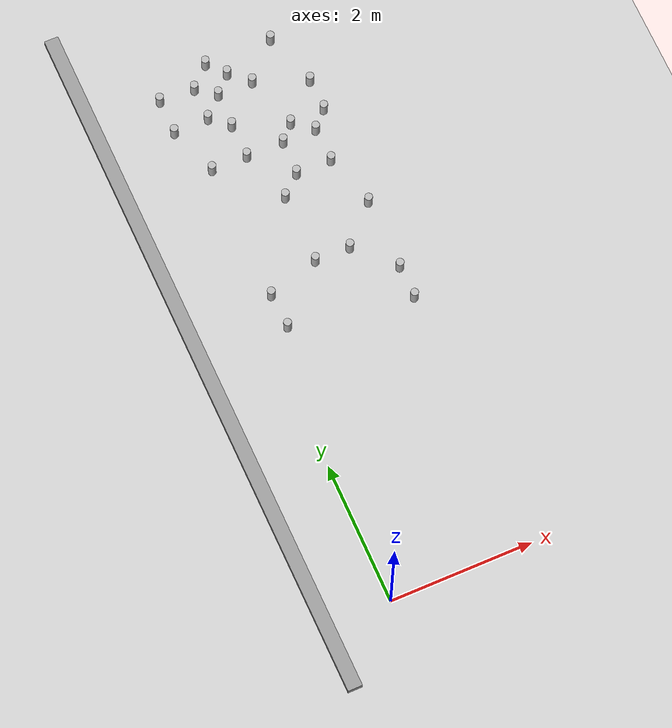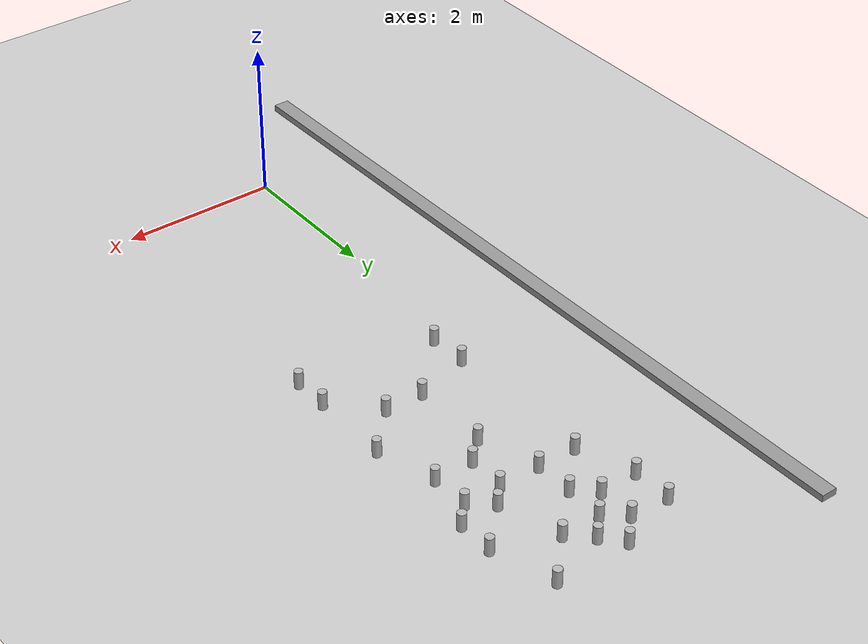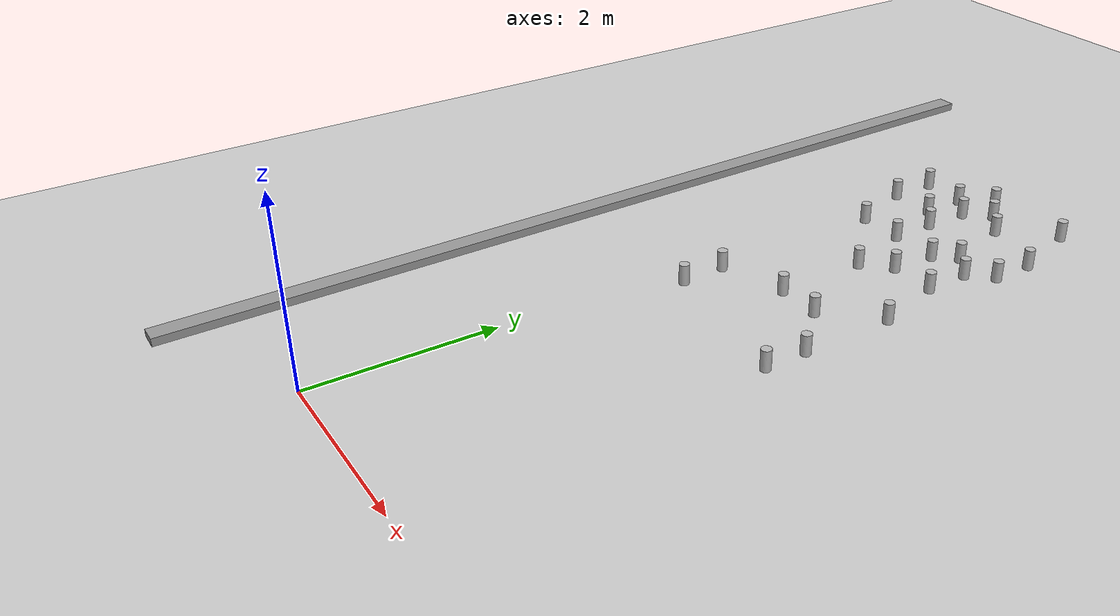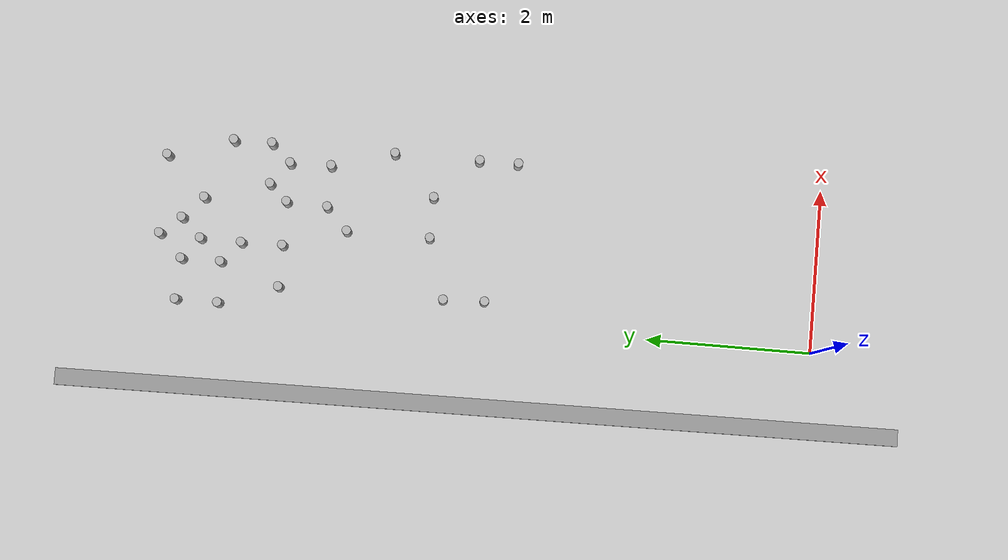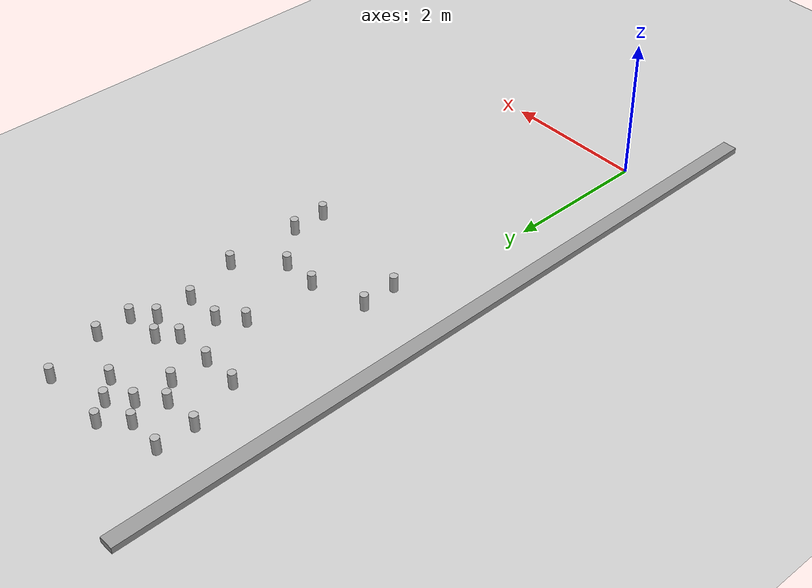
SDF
<sdf version="1.6">
 <world name="default">
  <model name="ground_plane">
   <static>1</static>
   <link name="link">
    <collision name="collision">
     <geometry><plane><normal>0 0 1</normal><size>100 100</size></plane></geometry>
     <surface><friction><ode><mu>100</mu><mu2>50</mu2></ode></friction></surface>
    </collision>
    <visual name="visual">
     <cast_shadows>0</cast_shadows>
     <geometry><plane><normal>0 0 1</normal><size>100 100</size></plane></geometry>
     <material>
      <script><uri>file://media/materials/scripts/gazebo.material</uri><name>Gazebo/Grey</name></script>
     </material>
    </visual>
   </link>
  </model>
  <model name="wall1">
   <static>1</static>
   <link name="link">
    <pose>0 0 0.42 0 -0 0</pose>
    <collision name="collision"><geometry><box><size>10 0.2 0.084</size></box></geometry></collision>
    <visual name="visual">
     <cast_shadows>0</cast_shadows>
     <geometry><box><size>10 0.2 0.084</size></box></geometry>
     <material>
      <script>
       <uri>model://grey_wall/materials/scripts</uri>
       <uri>model://grey_wall/materials/textures</uri>
       <name>vrc/grey_wall</name>
      </script>
     </material>
    </visual>
   </link>
   <pose>-1 4.0 0 0 -0 -1.55905</pose>
  </model>
  <model name="can0.07.72709570914">
   <link name="link">
    <pose>0 0 0.115 0 -0 0</pose>
    <inertial>
     <mass>0.39</mass>
     <inertia><ixx>0.00058</ixx><ixy>0</ixy><ixz>0</ixz><iyy>0.00058</iyy><iyz>0</iyz><izz>0.00019</izz></inertia>
    </inertial>
    <collision name="collision">
     <geometry><cylinder><radius>0.055</radius><length>0.23</length></cylinder></geometry>
    </collision>
    <visual name="visual">
     <geometry><cylinder><radius>0.055</radius><length>0.23</length></cylinder></geometry>
     <material>
      <script>
       <uri>model://beer/materials/scripts</uri>
       <uri>model://beer/materials/textures</uri>
       <name>Beer/Diffuse</name>
      </script>
     </material>
    </visual>
   </link>
   <pose>0.0 7.72709570914 -2e-06 1e-06 0 -9.5e-05</pose>
  </model>
  <model name="can0.7857185059218.0">
   <link name="link">
    <pose>0 0 0.115 0 -0 0</pose>
    <inertial>
     <mass>0.39</mass>
     <inertia><ixx>0.00058</ixx><ixy>0</ixy><ixz>0</ixz><iyy>0.00058</iyy><iyz>0</iyz><izz>0.00019</izz></inertia>
    </inertial>
    <collision name="collision">
     <geometry><cylinder><radius>0.055</radius><length>0.23</length></cylinder></geometry>
    </collision>
    <visual name="visual">
     <geometry><cylinder><radius>0.055</radius><length>0.23</length></cylinder></geometry>
     <material>
      <script>
       <uri>model://beer/materials/scripts</uri>
       <uri>model://beer/materials/textures</uri>
       <name>Beer/Diffuse</name>
      </script>
     </material>
    </visual>
   </link>
   <pose>0.785718505921 8.0 -2e-06 1e-06 0 -9.5e-05</pose>
  </model>
  <model name="can2.06.74284869615">
   <link name="link">
    <pose>0 0 0.115 0 -0 0</pose>
    <inertial>
     <mass>0.39</mass>
     <inertia><ixx>0.00058</ixx><ixy>0</ixy><ixz>0</ixz><iyy>0.00058</iyy><iyz>0</iyz><izz>0.00019</izz></inertia>
    </inertial>
    <collision name="collision">
     <geometry><cylinder><radius>0.055</radius><length>0.23</length></cylinder></geometry>
    </collision>
    <visual name="visual">
     <geometry><cylinder><radius>0.055</radius><length>0.23</length></cylinder></geometry>
     <material>
      <script>
       <uri>model://beer/materials/scripts</uri>
       <uri>model://beer/materials/textures</uri>
       <name>Beer/Diffuse</name>
      </script>
     </material>
    </visual>
   </link>
   <pose>2.0 6.74284869615 -2e-06 1e-06 0 -9.5e-05</pose>
  </model>
  <model name="can2.04.20142502307">
   <link name="link">
    <pose>0 0 0.115 0 -0 0</pose>
    <inertial>
     <mass>0.39</mass>
     <inertia><ixx>0.00058</ixx><ixy>0</ixy><ixz>0</ixz><iyy>0.00058</iyy><iyz>0</iyz><izz>0.00019</izz></inertia>
    </inertial>
    <collision name="collision">
     <geometry><cylinder><radius>0.055</radius><length>0.23</length></cylinder></geometry>
    </collision>
    <visual name="visual">
     <geometry><cylinder><radius>0.055</radius><length>0.23</length></cylinder></geometry>
     <material>
      <script>
       <uri>model://beer/materials/scripts</uri>
       <uri>model://beer/materials/textures</uri>
       <name>Beer/Diffuse</name>
      </script>
     </material>
    </visual>
   </link>
   <pose>2.0 4.20142502307 -2e-06 1e-06 0 -9.5e-05</pose>
  </model>
  <model name="can0.2540566139566.5">
   <link name="link">
    <pose>0 0 0.115 0 -0 0</pose>
    <inertial>
     <mass>0.39</mass>
     <inertia><ixx>0.00058</ixx><ixy>0</ixy><ixz>0</ixz><iyy>0.00058</iyy><iyz>0</iyz><izz>0.00019</izz></inertia>
    </inertial>
    <collision name="collision">
     <geometry><cylinder><radius>0.055</radius><length>0.23</length></cylinder></geometry>
    </collision>
    <visual name="visual">
     <geometry><cylinder><radius>0.055</radius><length>0.23</length></cylinder></geometry>
     <material>
      <script>
       <uri>model://beer/materials/scripts</uri>
       <uri>model://beer/materials/textures</uri>
       <name>Beer/Diffuse</name>
      </script>
     </material>
    </visual>
   </link>
   <pose>0.254056613956 6.5 -2e-06 1e-06 0 -9.5e-05</pose>
  </model>
  <model name="can1.07.7473566899">
   <link name="link">
    <pose>0 0 0.115 0 -0 0</pose>
    <inertial>
     <mass>0.39</mass>
     <inertia><ixx>0.00058</ixx><ixy>0</ixy><ixz>0</ixz><iyy>0.00058</iyy><iyz>0</iyz><izz>0.00019</izz></inertia>
    </inertial>
    <collision name="collision">
     <geometry><cylinder><radius>0.055</radius><length>0.23</length></cylinder></geometry>
    </collision>
    <visual name="visual">
     <geometry><cylinder><radius>0.055</radius><length>0.23</length></cylinder></geometry>
     <material>
      <script>
       <uri>model://beer/materials/scripts</uri>
       <uri>model://beer/materials/textures</uri>
       <name>Beer/Diffuse</name>
      </script>
     </material>
    </visual>
   </link>
   <pose>1.0 7.7473566899 -2e-06 1e-06 0 -9.5e-05</pose>
  </model>
  <model name="can1.297643053756.5">
   <link name="link">
    <pose>0 0 0.115 0 -0 0</pose>
    <inertial>
     <mass>0.39</mass>
     <inertia><ixx>0.00058</ixx><ixy>0</ixy><ixz>0</ixz><iyy>0.00058</iyy><iyz>0</iyz><izz>0.00019</izz></inertia>
    </inertial>
    <collision name="collision">
     <geometry><cylinder><radius>0.055</radius><length>0.23</length></cylinder></geometry>
    </collision>
    <visual name="visual">
     <geometry><cylinder><radius>0.055</radius><length>0.23</length></cylinder></geometry>
     <material>
      <script>
       <uri>model://beer/materials/scripts</uri>
       <uri>model://beer/materials/textures</uri>
       <name>Beer/Diffuse</name>
      </script>
     </material>
    </visual>
   </link>
   <pose>1.29764305375 6.5 -2e-06 1e-06 0 -9.5e-05</pose>
  </model>
  <model name="can0.2639431775654.5">
   <link name="link">
    <pose>0 0 0.115 0 -0 0</pose>
    <inertial>
     <mass>0.39</mass>
     <inertia><ixx>0.00058</ixx><ixy>0</ixy><ixz>0</ixz><iyy>0.00058</iyy><iyz>0</iyz><izz>0.00019</izz></inertia>
    </inertial>
    <collision name="collision">
     <geometry><cylinder><radius>0.055</radius><length>0.23</length></cylinder></geometry>
    </collision>
    <visual name="visual">
     <geometry><cylinder><radius>0.055</radius><length>0.23</length></cylinder></geometry>
     <material>
      <script>
       <uri>model://beer/materials/scripts</uri>
       <uri>model://beer/materials/textures</uri>
       <name>Beer/Diffuse</name>
      </script>
     </material>
    </visual>
   </link>
   <pose>0.263943177565 4.5 -2e-06 1e-06 0 -9.5e-05</pose>
  </model>
  <model name="can0.57.7079194421">
   <link name="link">
    <pose>0 0 0.115 0 -0 0</pose>
    <inertial>
     <mass>0.39</mass>
     <inertia><ixx>0.00058</ixx><ixy>0</ixy><ixz>0</ixz><iyy>0.00058</iyy><iyz>0</iyz><izz>0.00019</izz></inertia>
    </inertial>
    <collision name="collision">
     <geometry><cylinder><radius>0.055</radius><length>0.23</length></cylinder></geometry>
    </collision>
    <visual name="visual">
     <geometry><cylinder><radius>0.055</radius><length>0.23</length></cylinder></geometry>
     <material>
      <script>
       <uri>model://beer/materials/scripts</uri>
       <uri>model://beer/materials/textures</uri>
       <name>Beer/Diffuse</name>
      </script>
     </material>
    </visual>
   </link>
   <pose>0.5 7.7079194421 -2e-06 1e-06 0 -9.5e-05</pose>
  </model>
  <model name="can1.26739701757.5">
   <link name="link">
    <pose>0 0 0.115 0 -0 0</pose>
    <inertial>
     <mass>0.39</mass>
     <inertia><ixx>0.00058</ixx><ixy>0</ixy><ixz>0</ixz><iyy>0.00058</iyy><iyz>0</iyz><izz>0.00019</izz></inertia>
    </inertial>
    <collision name="collision">
     <geometry><cylinder><radius>0.055</radius><length>0.23</length></cylinder></geometry>
    </collision>
    <visual name="visual">
     <geometry><cylinder><radius>0.055</radius><length>0.23</length></cylinder></geometry>
     <material>
      <script>
       <uri>model://beer/materials/scripts</uri>
       <uri>model://beer/materials/textures</uri>
       <name>Beer/Diffuse</name>
      </script>
     </material>
    </visual>
   </link>
   <pose>1.2673970175 7.5 -2e-06 1e-06 0 -9.5e-05</pose>
  </model>
  <model name="can0.7620204478166.5">
   <link name="link">
    <pose>0 0 0.115 0 -0 0</pose>
    <inertial>
     <mass>0.39</mass>
     <inertia><ixx>0.00058</ixx><ixy>0</ixy><ixz>0</ixz><iyy>0.00058</iyy><iyz>0</iyz><izz>0.00019</izz></inertia>
    </inertial>
    <collision name="collision">
     <geometry><cylinder><radius>0.055</radius><length>0.23</length></cylinder></geometry>
    </collision>
    <visual name="visual">
     <geometry><cylinder><radius>0.055</radius><length>0.23</length></cylinder></geometry>
     <material>
      <script>
       <uri>model://beer/materials/scripts</uri>
       <uri>model://beer/materials/textures</uri>
       <name>Beer/Diffuse</name>
      </script>
     </material>
    </visual>
   </link>
   <pose>0.762020447816 6.5 -2e-06 1e-06 0 -9.5e-05</pose>
  </model>
  <model name="can2.03.72835050373">
   <link name="link">
    <pose>0 0 0.115 0 -0 0</pose>
    <inertial>
     <mass>0.39</mass>
     <inertia><ixx>0.00058</ixx><ixy>0</ixy><ixz>0</ixz><iyy>0.00058</iyy><iyz>0</iyz><izz>0.00019</izz></inertia>
    </inertial>
    <collision name="collision">
     <geometry><cylinder><radius>0.055</radius><length>0.23</length></cylinder></geometry>
    </collision>
    <visual name="visual">
     <geometry><cylinder><radius>0.055</radius><length>0.23</length></cylinder></geometry>
     <material>
      <script>
       <uri>model://beer/materials/scripts</uri>
       <uri>model://beer/materials/textures</uri>
       <name>Beer/Diffuse</name>
      </script>
     </material>
    </visual>
   </link>
   <pose>2.0 3.72835050373 -2e-06 1e-06 0 -9.5e-05</pose>
  </model>
  <model name="can1.54.72054648404">
   <link name="link">
    <pose>0 0 0.115 0 -0 0</pose>
    <inertial>
     <mass>0.39</mass>
     <inertia><ixx>0.00058</ixx><ixy>0</ixy><ixz>0</ixz><iyy>0.00058</iyy><iyz>0</iyz><izz>0.00019</izz></inertia>
    </inertial>
    <collision name="collision">
     <geometry><cylinder><radius>0.055</radius><length>0.23</length></cylinder></geometry>
    </collision>
    <visual name="visual">
     <geometry><cylinder><radius>0.055</radius><length>0.23</length></cylinder></geometry>
     <material>
      <script>
       <uri>model://beer/materials/scripts</uri>
       <uri>model://beer/materials/textures</uri>
       <name>Beer/Diffuse</name>
      </script>
     </material>
    </visual>
   </link>
   <pose>1.5 4.72054648404 -2e-06 1e-06 0 -9.5e-05</pose>
  </model>
  <model name="can0.7659461547997.5">
   <link name="link">
    <pose>0 0 0.115 0 -0 0</pose>
    <inertial>
     <mass>0.39</mass>
     <inertia><ixx>0.00058</ixx><ixy>0</ixy><ixz>0</ixz><iyy>0.00058</iyy><iyz>0</iyz><izz>0.00019</izz></inertia>
    </inertial>
    <collision name="collision">
     <geometry><cylinder><radius>0.055</radius><length>0.23</length></cylinder></geometry>
    </collision>
    <visual name="visual">
     <geometry><cylinder><radius>0.055</radius><length>0.23</length></cylinder></geometry>
     <material>
      <script>
       <uri>model://beer/materials/scripts</uri>
       <uri>model://beer/materials/textures</uri>
       <name>Beer/Diffuse</name>
      </script>
     </material>
    </visual>
   </link>
   <pose>0.765946154799 7.5 -2e-06 1e-06 0 -9.5e-05</pose>
  </model>
  <model name="can1.05.73789328465">
   <link name="link">
    <pose>0 0 0.115 0 -0 0</pose>
    <inertial>
     <mass>0.39</mass>
     <inertia><ixx>0.00058</ixx><ixy>0</ixy><ixz>0</ixz><iyy>0.00058</iyy><iyz>0</iyz><izz>0.00019</izz></inertia>
    </inertial>
    <collision name="collision">
     <geometry><cylinder><radius>0.055</radius><length>0.23</length></cylinder></geometry>
    </collision>
    <visual name="visual">
     <geometry><cylinder><radius>0.055</radius><length>0.23</length></cylinder></geometry>
     <material>
      <script>
       <uri>model://beer/materials/scripts</uri>
       <uri>model://beer/materials/textures</uri>
       <name>Beer/Diffuse</name>
      </script>
     </material>
    </visual>
   </link>
   <pose>1.0 5.73789328465 -2e-06 1e-06 0 -9.5e-05</pose>
  </model>
  <model name="can0.07.21308805167">
   <link name="link">
    <pose>0 0 0.115 0 -0 0</pose>
    <inertial>
     <mass>0.39</mass>
     <inertia><ixx>0.00058</ixx><ixy>0</ixy><ixz>0</ixz><iyy>0.00058</iyy><iyz>0</iyz><izz>0.00019</izz></inertia>
    </inertial>
    <collision name="collision">
     <geometry><cylinder><radius>0.055</radius><length>0.23</length></cylinder></geometry>
    </collision>
    <visual name="visual">
     <geometry><cylinder><radius>0.055</radius><length>0.23</length></cylinder></geometry>
     <material>
      <script>
       <uri>model://beer/materials/scripts</uri>
       <uri>model://beer/materials/textures</uri>
       <name>Beer/Diffuse</name>
      </script>
     </material>
    </visual>
   </link>
   <pose>0.0 7.21308805167 -2e-06 1e-06 0 -9.5e-05</pose>
  </model>
  <model name="can1.04.7252217207">
   <link name="link">
    <pose>0 0 0.115 0 -0 0</pose>
    <inertial>
     <mass>0.39</mass>
     <inertia><ixx>0.00058</ixx><ixy>0</ixy><ixz>0</ixz><iyy>0.00058</iyy><iyz>0</iyz><izz>0.00019</izz></inertia>
    </inertial>
    <collision name="collision">
     <geometry><cylinder><radius>0.055</radius><length>0.23</length></cylinder></geometry>
    </collision>
    <visual name="visual">
     <geometry><cylinder><radius>0.055</radius><length>0.23</length></cylinder></geometry>
     <material>
      <script>
       <uri>model://beer/materials/scripts</uri>
       <uri>model://beer/materials/textures</uri>
       <name>Beer/Diffuse</name>
      </script>
     </material>
    </visual>
   </link>
   <pose>1.0 4.7252217207 -2e-06 1e-06 0 -9.5e-05</pose>
  </model>
  <model name="can0.2842812566044.0">
   <link name="link">
    <pose>0 0 0.115 0 -0 0</pose>
    <inertial>
     <mass>0.39</mass>
     <inertia><ixx>0.00058</ixx><ixy>0</ixy><ixz>0</ixz><iyy>0.00058</iyy><iyz>0</iyz><izz>0.00019</izz></inertia>
    </inertial>
    <collision name="collision">
     <geometry><cylinder><radius>0.055</radius><length>0.23</length></cylinder></geometry>
    </collision>
    <visual name="visual">
     <geometry><cylinder><radius>0.055</radius><length>0.23</length></cylinder></geometry>
     <material>
      <script>
       <uri>model://beer/materials/scripts</uri>
       <uri>model://beer/materials/textures</uri>
       <name>Beer/Diffuse</name>
      </script>
     </material>
    </visual>
   </link>
   <pose>0.284281256604 4.0 -2e-06 1e-06 0 -9.5e-05</pose>
  </model>
  <model name="can1.56.72022522085">
   <link name="link">
    <pose>0 0 0.115 0 -0 0</pose>
    <inertial>
     <mass>0.39</mass>
     <inertia><ixx>0.00058</ixx><ixy>0</ixy><ixz>0</ixz><iyy>0.00058</iyy><iyz>0</iyz><izz>0.00019</izz></inertia>
    </inertial>
    <collision name="collision">
     <geometry><cylinder><radius>0.055</radius><length>0.23</length></cylinder></geometry>
    </collision>
    <visual name="visual">
     <geometry><cylinder><radius>0.055</radius><length>0.23</length></cylinder></geometry>
     <material>
      <script>
       <uri>model://beer/materials/scripts</uri>
       <uri>model://beer/materials/textures</uri>
       <name>Beer/Diffuse</name>
      </script>
     </material>
    </visual>
   </link>
   <pose>1.5 6.72022522085 -2e-06 1e-06 0 -9.5e-05</pose>
  </model>
  <model name="can0.7541022374677.0">
   <link name="link">
    <pose>0 0 0.115 0 -0 0</pose>
    <inertial>
     <mass>0.39</mass>
     <inertia><ixx>0.00058</ixx><ixy>0</ixy><ixz>0</ixz><iyy>0.00058</iyy><iyz>0</iyz><izz>0.00019</izz></inertia>
    </inertial>
    <collision name="collision">
     <geometry><cylinder><radius>0.055</radius><length>0.23</length></cylinder></geometry>
    </collision>
    <visual name="visual">
     <geometry><cylinder><radius>0.055</radius><length>0.23</length></cylinder></geometry>
     <material>
      <script>
       <uri>model://beer/materials/scripts</uri>
       <uri>model://beer/materials/textures</uri>
       <name>Beer/Diffuse</name>
      </script>
     </material>
    </visual>
   </link>
   <pose>0.754102237467 7.0 -2e-06 1e-06 0 -9.5e-05</pose>
  </model>
  <model name="can1.783569316416.0">
   <link name="link">
    <pose>0 0 0.115 0 -0 0</pose>
    <inertial>
     <mass>0.39</mass>
     <inertia><ixx>0.00058</ixx><ixy>0</ixy><ixz>0</ixz><iyy>0.00058</iyy><iyz>0</iyz><izz>0.00019</izz></inertia>
    </inertial>
    <collision name="collision">
     <geometry><cylinder><radius>0.055</radius><length>0.23</length></cylinder></geometry>
    </collision>
    <visual name="visual">
     <geometry><cylinder><radius>0.055</radius><length>0.23</length></cylinder></geometry>
     <material>
      <script>
       <uri>model://beer/materials/scripts</uri>
       <uri>model://beer/materials/textures</uri>
       <name>Beer/Diffuse</name>
      </script>
     </material>
    </visual>
   </link>
   <pose>1.78356931641 6.0 -2e-06 1e-06 0 -9.5e-05</pose>
  </model>
  <model name="can1.775165160436.5">
   <link name="link">
    <pose>0 0 0.115 0 -0 0</pose>
    <inertial>
     <mass>0.39</mass>
     <inertia><ixx>0.00058</ixx><ixy>0</ixy><ixz>0</ixz><iyy>0.00058</iyy><iyz>0</iyz><izz>0.00019</izz></inertia>
    </inertial>
    <collision name="collision">
     <geometry><cylinder><radius>0.055</radius><length>0.23</length></cylinder></geometry>
    </collision>
    <visual name="visual">
     <geometry><cylinder><radius>0.055</radius><length>0.23</length></cylinder></geometry>
     <material>
      <script>
       <uri>model://beer/materials/scripts</uri>
       <uri>model://beer/materials/textures</uri>
       <name>Beer/Diffuse</name>
      </script>
     </material>
    </visual>
   </link>
   <pose>1.77516516043 6.5 -2e-06 1e-06 0 -9.5e-05</pose>
  </model>
  <model name="can2.05.2369193296">
   <link name="link">
    <pose>0 0 0.115 0 -0 0</pose>
    <inertial>
     <mass>0.39</mass>
     <inertia><ixx>0.00058</ixx><ixy>0</ixy><ixz>0</ixz><iyy>0.00058</iyy><iyz>0</iyz><izz>0.00019</izz></inertia>
    </inertial>
    <collision name="collision">
     <geometry><cylinder><radius>0.055</radius><length>0.23</length></cylinder></geometry>
    </collision>
    <visual name="visual">
     <geometry><cylinder><radius>0.055</radius><length>0.23</length></cylinder></geometry>
     <material>
      <script>
       <uri>model://beer/materials/scripts</uri>
       <uri>model://beer/materials/textures</uri>
       <name>Beer/Diffuse</name>
      </script>
     </material>
    </visual>
   </link>
   <pose>2.0 5.2369193296 -2e-06 1e-06 0 -9.5e-05</pose>
  </model>
  <model name="can2.07.20959313255">
   <link name="link">
    <pose>0 0 0.115 0 -0 0</pose>
    <inertial>
     <mass>0.39</mass>
     <inertia><ixx>0.00058</ixx><ixy>0</ixy><ixz>0</ixz><iyy>0.00058</iyy><iyz>0</iyz><izz>0.00019</izz></inertia>
    </inertial>
    <collision name="collision">
     <geometry><cylinder><radius>0.055</radius><length>0.23</length></cylinder></geometry>
    </collision>
    <visual name="visual">
     <geometry><cylinder><radius>0.055</radius><length>0.23</length></cylinder></geometry>
     <material>
      <script>
       <uri>model://beer/materials/scripts</uri>
       <uri>model://beer/materials/textures</uri>
       <name>Beer/Diffuse</name>
      </script>
     </material>
    </visual>
   </link>
   <pose>2.0 7.20959313255 -2e-06 1e-06 0 -9.5e-05</pose>
  </model>
  <model name="can1.275404465156.0">
   <link name="link">
    <pose>0 0 0.115 0 -0 0</pose>
    <inertial>
     <mass>0.39</mass>
     <inertia><ixx>0.00058</ixx><ixy>0</ixy><ixz>0</ixz><iyy>0.00058</iyy><iyz>0</iyz><izz>0.00019</izz></inertia>
    </inertial>
    <collision name="collision">
     <geometry><cylinder><radius>0.055</radius><length>0.23</length></cylinder></geometry>
    </collision>
    <visual name="visual">
     <geometry><cylinder><radius>0.055</radius><length>0.23</length></cylinder></geometry>
     <material>
      <script>
       <uri>model://beer/materials/scripts</uri>
       <uri>model://beer/materials/textures</uri>
       <name>Beer/Diffuse</name>
      </script>
     </material>
    </visual>
   </link>
   <pose>1.27540446515 6.0 -2e-06 1e-06 0 -9.5e-05</pose>
  </model>
  <model name="can1.751275465228.0">
   <link name="link">
    <pose>0 0 0.115 0 -0 0</pose>
    <inertial>
     <mass>0.39</mass>
     <inertia><ixx>0.00058</ixx><ixy>0</ixy><ixz>0</ixz><iyy>0.00058</iyy><iyz>0</iyz><izz>0.00019</izz></inertia>
    </inertial>
    <collision name="collision">
     <geometry><cylinder><radius>0.055</radius><length>0.23</length></cylinder></geometry>
    </collision>
    <visual name="visual">
     <geometry><cylinder><radius>0.055</radius><length>0.23</length></cylinder></geometry>
     <material>
      <script>
       <uri>model://beer/materials/scripts</uri>
       <uri>model://beer/materials/textures</uri>
       <name>Beer/Diffuse</name>
      </script>
     </material>
    </visual>
   </link>
   <pose>1.75127546522 8.0 -2e-06 1e-06 0 -9.5e-05</pose>
  </model>
  <model name="can0.57.22831082798">
   <link name="link">
    <pose>0 0 0.115 0 -0 0</pose>
    <inertial>
     <mass>0.39</mass>
     <inertia><ixx>0.00058</ixx><ixy>0</ixy><ixz>0</ixz><iyy>0.00058</iyy><iyz>0</iyz><izz>0.00019</izz></inertia>
    </inertial>
    <collision name="collision">
     <geometry><cylinder><radius>0.055</radius><length>0.23</length></cylinder></geometry>
    </collision>
    <visual name="visual">
     <geometry><cylinder><radius>0.055</radius><length>0.23</length></cylinder></geometry>
     <material>
      <script>
       <uri>model://beer/materials/scripts</uri>
       <uri>model://beer/materials/textures</uri>
       <name>Beer/Diffuse</name>
      </script>
     </material>
    </visual>
   </link>
   <pose>0.5 7.22831082798 -2e-06 1e-06 0 -9.5e-05</pose>
  </model>
 </world>
</sdf>
